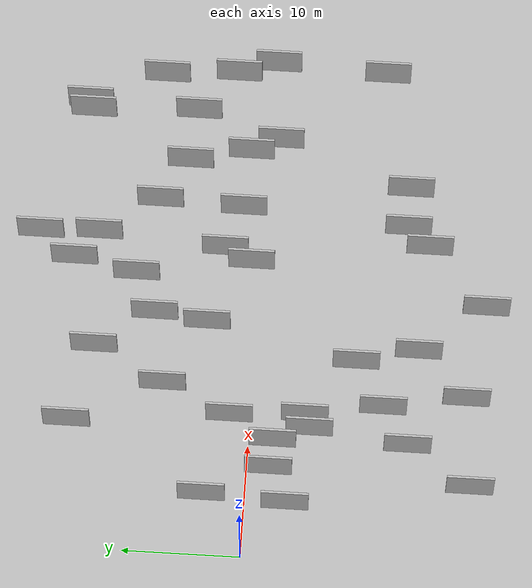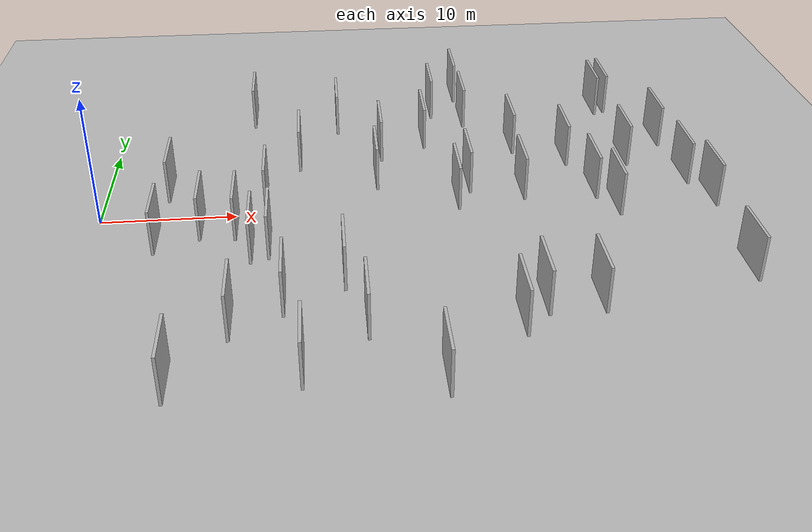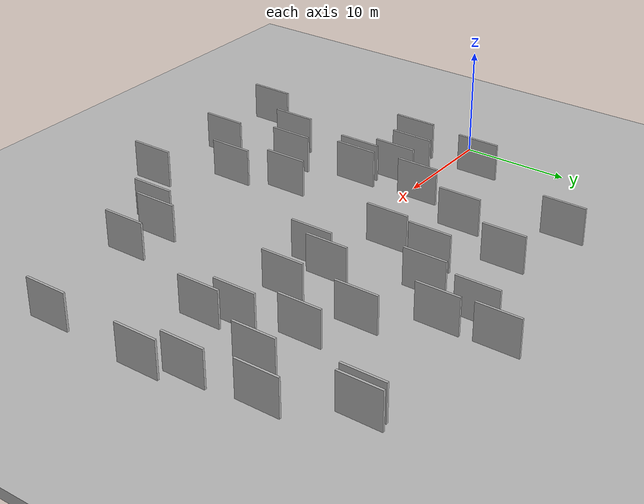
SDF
<?xml version="1.0" encoding="utf-8"?>

<sdf version="1.6">

   <world name="default">

      <gui fullscreen="0">

         <camera name="user_camera">

            <pose>-15 0 4.57585 0 0 0</pose>

            <view_controller>orbit</view_controller>

         </camera>

      </gui>

      <scene>

         <sky>

           <clouds>

             <speed>12</speed>

           </clouds>

         </sky>

         <ambient>0.4 0.4 0.4 1</ambient>

         <background>0.7 0.7 0.7 1</background>

         <shadows>1</shadows>

      </scene>

      <gravity>0 0 -9.8066</gravity>

      <magnetic_field>6e-06 2.3e-05 -4.2e-05</magnetic_field>

      <physics default="0" name="default_physics" type="ode">

         <ode>

            <solver>

               <type>quick</type>

               <iters>10</iters>

               <sor>1.0</sor>

               <use_dynamic_moi_rescaling>0</use_dynamic_moi_rescaling>

            </solver>

            <constraints>

               <cfm>0</cfm>

               <erp>0.2</erp>

               <contact_max_correcting_vel>100</contact_max_correcting_vel>

               <contact_surface_layer>0.001</contact_surface_layer>

            </constraints>

         </ode>

         <max_step_size>0.004</max_step_size>

         <real_time_factor>1</real_time_factor>

         <real_time_update_rate>250</real_time_update_rate>

      </physics>

      <light name="sun" type="directional">

         <cast_shadows>1</cast_shadows>

         <pose>0 0 10 0 0 0</pose>

         <diffuse>0.8 0.8 0.8 1</diffuse>

         <specular>0.2 0.2 0.2 1</specular>

         <attenuation>

            <range>1000</range>

            <constant>0.9</constant>

            <linear>0.01</linear>

            <quadratic>0.001</quadratic>

         </attenuation>

         <direction>-0.5 0.1 -0.9</direction>

      </light>

      <include>

         <name>ground_plane_1</name>

         <uri>model://HANNAS_ground_plane</uri>

         <pose>0 0 0  0 0 0</pose>

      </include>

      <include>

         <name>ground_plane_2</name>

         <uri>model://HANNAS_ground_plane</uri>

         <pose>100 0 0  0 0 0</pose>

      </include>

      <model name="HANNAS_wall_1">

         <static>1</static>

         <pose frame="">44.7599 2.9749 0.0 0.000000 0.000000 1.570796</pose>

         <link name="link">

            <pose frame="">0 0 2.00 0 0 0</pose>

            <collision name="collision">

               <geometry>

                  <box>

                     <size>4.00 0.2 4.00</size>

                  </box>

               </geometry>

               <max_contacts>10</max_contacts>

               <surface>

                  <contact>

                     <ode/>

                  </contact>

                  <bounce/>

                  <friction>

                     <torsional>

                        <ode/>

                     </torsional>

                     <ode/>

                  </friction>

               </surface>

            </collision>

            <visual name="visual">

               <cast_shadows>0</cast_shadows>

               <geometry>

                  <box>

                     <size>4.00 0.2 4.00</size>

                  </box>

               </geometry>

               <material>

                  <script>

                     <uri>model://HANNAS_wall/materials/scripts</uri>

                     <uri>model://HANNAS_wall/materials/textures</uri>

                     <name>vrc/HANNAS_wall</name>

                  </script>

               </material>

            </visual>

            <self_collide>0</self_collide>

            <enable_wind>0</enable_wind>

            <kinematic>0</kinematic>

         </link>

      </model>

      <model name="HANNAS_wall_2">

         <static>1</static>

         <pose frame="">27.7010 3.0862 0.0 0.000000 0.000000 1.570796</pose>

         <link name="link">

            <pose frame="">0 0 2.00 0 0 0</pose>

            <collision name="collision">

               <geometry>

                  <box>

                     <size>4.00 0.2 4.00</size>

                  </box>

               </geometry>

               <max_contacts>10</max_contacts>

               <surface>

                  <contact>

                     <ode/>

                  </contact>

                  <bounce/>

                  <friction>

                     <torsional>

                        <ode/>

                     </torsional>

                     <ode/>

                  </friction>

               </surface>

            </collision>

            <visual name="visual">

               <cast_shadows>0</cast_shadows>

               <geometry>

                  <box>

                     <size>4.00 0.2 4.00</size>

                  </box>

               </geometry>

               <material>

                  <script>

                     <uri>model://HANNAS_wall/materials/scripts</uri>

                     <uri>model://HANNAS_wall/materials/textures</uri>

                     <name>vrc/HANNAS_wall</name>

                  </script>

               </material>

            </visual>

            <self_collide>0</self_collide>

            <enable_wind>0</enable_wind>

            <kinematic>0</kinematic>

         </link>

      </model>

      <model name="HANNAS_wall_3">

         <static>1</static>

         <pose frame="">28.8396 -14.5593 0.0 0.000000 0.000000 1.570796</pose>

         <link name="link">

            <pose frame="">0 0 2.00 0 0 0</pose>

            <collision name="collision">

               <geometry>

                  <box>

                     <size>4.00 0.2 4.00</size>

                  </box>

               </geometry>

               <max_contacts>10</max_contacts>

               <surface>

                  <contact>

                     <ode/>

                  </contact>

                  <bounce/>

                  <friction>

                     <torsional>

                        <ode/>

                     </torsional>

                     <ode/>

                  </friction>

               </surface>

            </collision>

            <visual name="visual">

               <cast_shadows>0</cast_shadows>

               <geometry>

                  <box>

                     <size>4.00 0.2 4.00</size>

                  </box>

               </geometry>

               <material>

                  <script>

                     <uri>model://HANNAS_wall/materials/scripts</uri>

                     <uri>model://HANNAS_wall/materials/textures</uri>

                     <name>vrc/HANNAS_wall</name>

                  </script>

               </material>

            </visual>

            <self_collide>0</self_collide>

            <enable_wind>0</enable_wind>

            <kinematic>0</kinematic>

         </link>

      </model>

      <model name="HANNAS_wall_4">

         <static>1</static>

         <pose frame="">4.5021 -3.4465 0.0 0.000000 0.000000 1.570796</pose>

         <link name="link">

            <pose frame="">0 0 2.00 0 0 0</pose>

            <collision name="collision">

               <geometry>

                  <box>

                     <size>4.00 0.2 4.00</size>

                  </box>

               </geometry>

               <max_contacts>10</max_contacts>

               <surface>

                  <contact>

                     <ode/>

                  </contact>

                  <bounce/>

                  <friction>

                     <torsional>

                        <ode/>

                     </torsional>

                     <ode/>

                  </friction>

               </surface>

            </collision>

            <visual name="visual">

               <cast_shadows>0</cast_shadows>

               <geometry>

                  <box>

                     <size>4.00 0.2 4.00</size>

                  </box>

               </geometry>

               <material>

                  <script>

                     <uri>model://HANNAS_wall/materials/scripts</uri>

                     <uri>model://HANNAS_wall/materials/textures</uri>

                     <name>vrc/HANNAS_wall</name>

                  </script>

               </material>

            </visual>

            <self_collide>0</self_collide>

            <enable_wind>0</enable_wind>

            <kinematic>0</kinematic>

         </link>

      </model>

      <model name="HANNAS_wall_5">

         <static>1</static>

         <pose frame="">14.7368 7.5859 0.0 0.000000 0.000000 1.570796</pose>

         <link name="link">

            <pose frame="">0 0 2.00 0 0 0</pose>

            <collision name="collision">

               <geometry>

                  <box>

                     <size>4.00 0.2 4.00</size>

                  </box>

               </geometry>

               <max_contacts>10</max_contacts>

               <surface>

                  <contact>

                     <ode/>

                  </contact>

                  <bounce/>

                  <friction>

                     <torsional>

                        <ode/>

                     </torsional>

                     <ode/>

                  </friction>

               </surface>

            </collision>

            <visual name="visual">

               <cast_shadows>0</cast_shadows>

               <geometry>

                  <box>

                     <size>4.00 0.2 4.00</size>

                  </box>

               </geometry>

               <material>

                  <script>

                     <uri>model://HANNAS_wall/materials/scripts</uri>

                     <uri>model://HANNAS_wall/materials/textures</uri>

                     <name>vrc/HANNAS_wall</name>

                  </script>

               </material>

            </visual>

            <self_collide>0</self_collide>

            <enable_wind>0</enable_wind>

            <kinematic>0</kinematic>

         </link>

      </model>

      <model name="HANNAS_wall_6">

         <static>1</static>

         <pose frame="">45.3804 -10.1234 0.0 0.000000 0.000000 1.570796</pose>

         <link name="link">

            <pose frame="">0 0 2.00 0 0 0</pose>

            <collision name="collision">

               <geometry>

                  <box>

                     <size>4.00 0.2 4.00</size>

                  </box>

               </geometry>

               <max_contacts>10</max_contacts>

               <surface>

                  <contact>

                     <ode/>

                  </contact>

                  <bounce/>

                  <friction>

                     <torsional>

                        <ode/>

                     </torsional>

                     <ode/>

                  </friction>

               </surface>

            </collision>

            <visual name="visual">

               <cast_shadows>0</cast_shadows>

               <geometry>

                  <box>

                     <size>4.00 0.2 4.00</size>

                  </box>

               </geometry>

               <material>

                  <script>

                     <uri>model://HANNAS_wall/materials/scripts</uri>

                     <uri>model://HANNAS_wall/materials/textures</uri>

                     <name>vrc/HANNAS_wall</name>

                  </script>

               </material>

            </visual>

            <self_collide>0</self_collide>

            <enable_wind>0</enable_wind>

            <kinematic>0</kinematic>

         </link>

      </model>

      <model name="HANNAS_wall_7">

         <static>1</static>

         <pose frame="">35.9530 6.6664 0.0 0.000000 0.000000 1.570796</pose>

         <link name="link">

            <pose frame="">0 0 2.00 0 0 0</pose>

            <collision name="collision">

               <geometry>

                  <box>

                     <size>4.00 0.2 4.00</size>

                  </box>

               </geometry>

               <max_contacts>10</max_contacts>

               <surface>

                  <contact>

                     <ode/>

                  </contact>

                  <bounce/>

                  <friction>

                     <torsional>

                        <ode/>

                     </torsional>

                     <ode/>

                  </friction>

               </surface>

            </collision>

            <visual name="visual">

               <cast_shadows>0</cast_shadows>

               <geometry>

                  <box>

                     <size>4.00 0.2 4.00</size>

                  </box>

               </geometry>

               <material>

                  <script>

                     <uri>model://HANNAS_wall/materials/scripts</uri>

                     <uri>model://HANNAS_wall/materials/textures</uri>

                     <name>vrc/HANNAS_wall</name>

                  </script>

               </material>

            </visual>

            <self_collide>0</self_collide>

            <enable_wind>0</enable_wind>

            <kinematic>0</kinematic>

         </link>

      </model>

      <model name="HANNAS_wall_8">

         <static>1</static>

         <pose frame="">26.0616 16.0210 0.0 0.000000 0.000000 1.570796</pose>

         <link name="link">

            <pose frame="">0 0 2.00 0 0 0</pose>

            <collision name="collision">

               <geometry>

                  <box>

                     <size>4.00 0.2 4.00</size>

                  </box>

               </geometry>

               <max_contacts>10</max_contacts>

               <surface>

                  <contact>

                     <ode/>

                  </contact>

                  <bounce/>

                  <friction>

                     <torsional>

                        <ode/>

                     </torsional>

                     <ode/>

                  </friction>

               </surface>

            </collision>

            <visual name="visual">

               <cast_shadows>0</cast_shadows>

               <geometry>

                  <box>

                     <size>4.00 0.2 4.00</size>

                  </box>

               </geometry>

               <material>

                  <script>

                     <uri>model://HANNAS_wall/materials/scripts</uri>

                     <uri>model://HANNAS_wall/materials/textures</uri>

                     <name>vrc/HANNAS_wall</name>

                  </script>

               </material>

            </visual>

            <self_collide>0</self_collide>

            <enable_wind>0</enable_wind>

            <kinematic>0</kinematic>

         </link>

      </model>

      <model name="HANNAS_wall_9">

         <static>1</static>

         <pose frame="">31.6776 1.7354 0.0 0.000000 0.000000 1.570796</pose>

         <link name="link">

            <pose frame="">0 0 2.00 0 0 0</pose>

            <collision name="collision">

               <geometry>

                  <box>

                     <size>4.00 0.2 4.00</size>

                  </box>

               </geometry>

               <max_contacts>10</max_contacts>

               <surface>

                  <contact>

                     <ode/>

                  </contact>

                  <bounce/>

                  <friction>

                     <torsional>

                        <ode/>

                     </torsional>

                     <ode/>

                  </friction>

               </surface>

            </collision>

            <visual name="visual">

               <cast_shadows>0</cast_shadows>

               <geometry>

                  <box>

                     <size>4.00 0.2 4.00</size>

                  </box>

               </geometry>

               <material>

                  <script>

                     <uri>model://HANNAS_wall/materials/scripts</uri>

                     <uri>model://HANNAS_wall/materials/textures</uri>

                     <name>vrc/HANNAS_wall</name>

                  </script>

               </material>

            </visual>

            <self_collide>0</self_collide>

            <enable_wind>0</enable_wind>

            <kinematic>0</kinematic>

         </link>

      </model>

      <model name="HANNAS_wall_10">

         <static>1</static>

         <pose frame="">6.8387 -18.8885 0.0 0.000000 0.000000 1.570796</pose>

         <link name="link">

            <pose frame="">0 0 2.00 0 0 0</pose>

            <collision name="collision">

               <geometry>

                  <box>

                     <size>4.00 0.2 4.00</size>

                  </box>

               </geometry>

               <max_contacts>10</max_contacts>

               <surface>

                  <contact>

                     <ode/>

                  </contact>

                  <bounce/>

                  <friction>

                     <torsional>

                        <ode/>

                     </torsional>

                     <ode/>

                  </friction>

               </surface>

            </collision>

            <visual name="visual">

               <cast_shadows>0</cast_shadows>

               <geometry>

                  <box>

                     <size>4.00 0.2 4.00</size>

                  </box>

               </geometry>

               <material>

                  <script>

                     <uri>model://HANNAS_wall/materials/scripts</uri>

                     <uri>model://HANNAS_wall/materials/textures</uri>

                     <name>vrc/HANNAS_wall</name>

                  </script>

               </material>

            </visual>

            <self_collide>0</self_collide>

            <enable_wind>0</enable_wind>

            <kinematic>0</kinematic>

         </link>

      </model>

      <model name="HANNAS_wall_11">

         <static>1</static>

         <pose frame="">44.2711 9.2897 0.0 0.000000 0.000000 1.570796</pose>

         <link name="link">

            <pose frame="">0 0 2.00 0 0 0</pose>

            <collision name="collision">

               <geometry>

                  <box>

                     <size>4.00 0.2 4.00</size>

                  </box>

               </geometry>

               <max_contacts>10</max_contacts>

               <surface>

                  <contact>

                     <ode/>

                  </contact>

                  <bounce/>

                  <friction>

                     <torsional>

                        <ode/>

                     </torsional>

                     <ode/>

                  </friction>

               </surface>

            </collision>

            <visual name="visual">

               <cast_shadows>0</cast_shadows>

               <geometry>

                  <box>

                     <size>4.00 0.2 4.00</size>

                  </box>

               </geometry>

               <material>

                  <script>

                     <uri>model://HANNAS_wall/materials/scripts</uri>

                     <uri>model://HANNAS_wall/materials/textures</uri>

                     <name>vrc/HANNAS_wall</name>

                  </script>

               </material>

            </visual>

            <self_collide>0</self_collide>

            <enable_wind>0</enable_wind>

            <kinematic>0</kinematic>

         </link>

      </model>

      <model name="HANNAS_wall_12">

         <static>1</static>

         <pose frame="">41.2984 15.8101 0.0 0.000000 0.000000 1.570796</pose>

         <link name="link">

            <pose frame="">0 0 2.00 0 0 0</pose>

            <collision name="collision">

               <geometry>

                  <box>

                     <size>4.00 0.2 4.00</size>

                  </box>

               </geometry>

               <max_contacts>10</max_contacts>

               <surface>

                  <contact>

                     <ode/>

                  </contact>

                  <bounce/>

                  <friction>

                     <torsional>

                        <ode/>

                     </torsional>

                     <ode/>

                  </friction>

               </surface>

            </collision>

            <visual name="visual">

               <cast_shadows>0</cast_shadows>

               <geometry>

                  <box>

                     <size>4.00 0.2 4.00</size>

                  </box>

               </geometry>

               <material>

                  <script>

                     <uri>model://HANNAS_wall/materials/scripts</uri>

                     <uri>model://HANNAS_wall/materials/textures</uri>

                     <name>vrc/HANNAS_wall</name>

                  </script>

               </material>

            </visual>

            <self_collide>0</self_collide>

            <enable_wind>0</enable_wind>

            <kinematic>0</kinematic>

         </link>

      </model>

      <model name="HANNAS_wall_13">

         <static>1</static>

         <pose frame="">37.1559 1.4087 0.0 0.000000 0.000000 1.570796</pose>

         <link name="link">

            <pose frame="">0 0 2.00 0 0 0</pose>

            <collision name="collision">

               <geometry>

                  <box>

                     <size>4.00 0.2 4.00</size>

                  </box>

               </geometry>

               <max_contacts>10</max_contacts>

               <surface>

                  <contact>

                     <ode/>

                  </contact>

                  <bounce/>

                  <friction>

                     <torsional>

                        <ode/>

                     </torsional>

                     <ode/>

                  </friction>

               </surface>

            </collision>

            <visual name="visual">

               <cast_shadows>0</cast_shadows>

               <geometry>

                  <box>

                     <size>4.00 0.2 4.00</size>

                  </box>

               </geometry>

               <material>

                  <script>

                     <uri>model://HANNAS_wall/materials/scripts</uri>

                     <uri>model://HANNAS_wall/materials/textures</uri>

                     <name>vrc/HANNAS_wall</name>

                  </script>

               </material>

            </visual>

            <self_collide>0</self_collide>

            <enable_wind>0</enable_wind>

            <kinematic>0</kinematic>

         </link>

      </model>

      <model name="HANNAS_wall_14">

         <static>1</static>

         <pose frame="">17.7232 -8.7686 0.0 0.000000 0.000000 1.570796</pose>

         <link name="link">

            <pose frame="">0 0 2.00 0 0 0</pose>

            <collision name="collision">

               <geometry>

                  <box>

                     <size>4.00 0.2 4.00</size>

                  </box>

               </geometry>

               <max_contacts>10</max_contacts>

               <surface>

                  <contact>

                     <ode/>

                  </contact>

                  <bounce/>

                  <friction>

                     <torsional>

                        <ode/>

                     </torsional>

                     <ode/>

                  </friction>

               </surface>

            </collision>

            <visual name="visual">

               <cast_shadows>0</cast_shadows>

               <geometry>

                  <box>

                     <size>4.00 0.2 4.00</size>

                  </box>

               </geometry>

               <material>

                  <script>

                     <uri>model://HANNAS_wall/materials/scripts</uri>

                     <uri>model://HANNAS_wall/materials/textures</uri>

                     <name>vrc/HANNAS_wall</name>

                  </script>

               </material>

            </visual>

            <self_collide>0</self_collide>

            <enable_wind>0</enable_wind>

            <kinematic>0</kinematic>

         </link>

      </model>

      <model name="HANNAS_wall_15">

         <static>1</static>

         <pose frame="">23.4018 -19.6568 0.0 0.000000 0.000000 1.570796</pose>

         <link name="link">

            <pose frame="">0 0 2.00 0 0 0</pose>

            <collision name="collision">

               <geometry>

                  <box>

                     <size>4.00 0.2 4.00</size>

                  </box>

               </geometry>

               <max_contacts>10</max_contacts>

               <surface>

                  <contact>

                     <ode/>

                  </contact>

                  <bounce/>

                  <friction>

                     <torsional>

                        <ode/>

                     </torsional>

                     <ode/>

                  </friction>

               </surface>

            </collision>

            <visual name="visual">

               <cast_shadows>0</cast_shadows>

               <geometry>

                  <box>

                     <size>4.00 0.2 4.00</size>

                  </box>

               </geometry>

               <material>

                  <script>

                     <uri>model://HANNAS_wall/materials/scripts</uri>

                     <uri>model://HANNAS_wall/materials/textures</uri>

                     <name>vrc/HANNAS_wall</name>

                  </script>

               </material>

            </visual>

            <self_collide>0</self_collide>

            <enable_wind>0</enable_wind>

            <kinematic>0</kinematic>

         </link>

      </model>

      <model name="HANNAS_wall_16">

         <static>1</static>

         <pose frame="">21.2664 8.7195 0.0 0.000000 0.000000 1.570796</pose>

         <link name="link">

            <pose frame="">0 0 2.00 0 0 0</pose>

            <collision name="collision">

               <geometry>

                  <box>

                     <size>4.00 0.2 4.00</size>

                  </box>

               </geometry>

               <max_contacts>10</max_contacts>

               <surface>

                  <contact>

                     <ode/>

                  </contact>

                  <bounce/>

                  <friction>

                     <torsional>

                        <ode/>

                     </torsional>

                     <ode/>

                  </friction>

               </surface>

            </collision>

            <visual name="visual">

               <cast_shadows>0</cast_shadows>

               <geometry>

                  <box>

                     <size>4.00 0.2 4.00</size>

                  </box>

               </geometry>

               <material>

                  <script>

                     <uri>model://HANNAS_wall/materials/scripts</uri>

                     <uri>model://HANNAS_wall/materials/textures</uri>

                     <name>vrc/HANNAS_wall</name>

                  </script>

               </material>

            </visual>

            <self_collide>0</self_collide>

            <enable_wind>0</enable_wind>

            <kinematic>0</kinematic>

         </link>

      </model>

      <model name="HANNAS_wall_17">

         <static>1</static>

         <pose frame="">20.6530 4.1828 0.0 0.000000 0.000000 1.570796</pose>

         <link name="link">

            <pose frame="">0 0 2.00 0 0 0</pose>

            <collision name="collision">

               <geometry>

                  <box>

                     <size>4.00 0.2 4.00</size>

                  </box>

               </geometry>

               <max_contacts>10</max_contacts>

               <surface>

                  <contact>

                     <ode/>

                  </contact>

                  <bounce/>

                  <friction>

                     <torsional>

                        <ode/>

                     </torsional>

                     <ode/>

                  </friction>

               </surface>

            </collision>

            <visual name="visual">

               <cast_shadows>0</cast_shadows>

               <geometry>

                  <box>

                     <size>4.00 0.2 4.00</size>

                  </box>

               </geometry>

               <material>

                  <script>

                     <uri>model://HANNAS_wall/materials/scripts</uri>

                     <uri>model://HANNAS_wall/materials/textures</uri>

                     <name>vrc/HANNAS_wall</name>

                  </script>

               </material>

            </visual>

            <self_collide>0</self_collide>

            <enable_wind>0</enable_wind>

            <kinematic>0</kinematic>

         </link>

      </model>

      <model name="HANNAS_wall_18">

         <static>1</static>

         <pose frame="">28.4079 19.1442 0.0 0.000000 0.000000 1.570796</pose>

         <link name="link">

            <pose frame="">0 0 2.00 0 0 0</pose>

            <collision name="collision">

               <geometry>

                  <box>

                     <size>4.00 0.2 4.00</size>

                  </box>

               </geometry>

               <max_contacts>10</max_contacts>

               <surface>

                  <contact>

                     <ode/>

                  </contact>

                  <bounce/>

                  <friction>

                     <torsional>

                        <ode/>

                     </torsional>

                     <ode/>

                  </friction>

               </surface>

            </collision>

            <visual name="visual">

               <cast_shadows>0</cast_shadows>

               <geometry>

                  <box>

                     <size>4.00 0.2 4.00</size>

                  </box>

               </geometry>

               <material>

                  <script>

                     <uri>model://HANNAS_wall/materials/scripts</uri>

                     <uri>model://HANNAS_wall/materials/textures</uri>

                     <name>vrc/HANNAS_wall</name>

                  </script>

               </material>

            </visual>

            <self_collide>0</self_collide>

            <enable_wind>0</enable_wind>

            <kinematic>0</kinematic>

         </link>

      </model>

      <model name="HANNAS_wall_19">

         <static>1</static>

         <pose frame="">14.8670 -18.2886 0.0 0.000000 0.000000 1.570796</pose>

         <link name="link">

            <pose frame="">0 0 2.00 0 0 0</pose>

            <collision name="collision">

               <geometry>

                  <box>

                     <size>4.00 0.2 4.00</size>

                  </box>

               </geometry>

               <max_contacts>10</max_contacts>

               <surface>

                  <contact>

                     <ode/>

                  </contact>

                  <bounce/>

                  <friction>

                     <torsional>

                        <ode/>

                     </torsional>

                     <ode/>

                  </friction>

               </surface>

            </collision>

            <visual name="visual">

               <cast_shadows>0</cast_shadows>

               <geometry>

                  <box>

                     <size>4.00 0.2 4.00</size>

                  </box>

               </geometry>

               <material>

                  <script>

                     <uri>model://HANNAS_wall/materials/scripts</uri>

                     <uri>model://HANNAS_wall/materials/textures</uri>

                     <name>vrc/HANNAS_wall</name>

                  </script>

               </material>

            </visual>

            <self_collide>0</self_collide>

            <enable_wind>0</enable_wind>

            <kinematic>0</kinematic>

         </link>

      </model>

      <model name="HANNAS_wall_20">

         <static>1</static>

         <pose frame="">40.4381 15.5138 0.0 0.000000 0.000000 1.570796</pose>

         <link name="link">

            <pose frame="">0 0 2.00 0 0 0</pose>

            <collision name="collision">

               <geometry>

                  <box>

                     <size>4.00 0.2 4.00</size>

                  </box>

               </geometry>

               <max_contacts>10</max_contacts>

               <surface>

                  <contact>

                     <ode/>

                  </contact>

                  <bounce/>

                  <friction>

                     <torsional>

                        <ode/>

                     </torsional>

                     <ode/>

                  </friction>

               </surface>

            </collision>

            <visual name="visual">

               <cast_shadows>0</cast_shadows>

               <geometry>

                  <box>

                     <size>4.00 0.2 4.00</size>

                  </box>

               </geometry>

               <material>

                  <script>

                     <uri>model://HANNAS_wall/materials/scripts</uri>

                     <uri>model://HANNAS_wall/materials/textures</uri>

                     <name>vrc/HANNAS_wall</name>

                  </script>

               </material>

            </visual>

            <self_collide>0</self_collide>

            <enable_wind>0</enable_wind>

            <kinematic>0</kinematic>

         </link>

      </model>

      <model name="HANNAS_wall_21">

         <static>1</static>

         <pose frame="">18.9939 -14.0450 0.0 0.000000 0.000000 1.570796</pose>

         <link name="link">

            <pose frame="">0 0 2.00 0 0 0</pose>

            <collision name="collision">

               <geometry>

                  <box>

                     <size>4.00 0.2 4.00</size>

                  </box>

               </geometry>

               <max_contacts>10</max_contacts>

               <surface>

                  <contact>

                     <ode/>

                  </contact>

                  <bounce/>

                  <friction>

                     <torsional>

                        <ode/>

                     </torsional>

                     <ode/>

                  </friction>

               </surface>

            </collision>

            <visual name="visual">

               <cast_shadows>0</cast_shadows>

               <geometry>

                  <box>

                     <size>4.00 0.2 4.00</size>

                  </box>

               </geometry>

               <material>

                  <script>

                     <uri>model://HANNAS_wall/materials/scripts</uri>

                     <uri>model://HANNAS_wall/materials/textures</uri>

                     <name>vrc/HANNAS_wall</name>

                  </script>

               </material>

            </visual>

            <self_collide>0</self_collide>

            <enable_wind>0</enable_wind>

            <kinematic>0</kinematic>

         </link>

      </model>

      <model name="HANNAS_wall_22">

         <static>1</static>

         <pose frame="">10.2806 -13.4871 0.0 0.000000 0.000000 1.570796</pose>

         <link name="link">

            <pose frame="">0 0 2.00 0 0 0</pose>

            <collision name="collision">

               <geometry>

                  <box>

                     <size>4.00 0.2 4.00</size>

                  </box>

               </geometry>

               <max_contacts>10</max_contacts>

               <surface>

                  <contact>

                     <ode/>

                  </contact>

                  <bounce/>

                  <friction>

                     <torsional>

                        <ode/>

                     </torsional>

                     <ode/>

                  </friction>

               </surface>

            </collision>

            <visual name="visual">

               <cast_shadows>0</cast_shadows>

               <geometry>

                  <box>

                     <size>4.00 0.2 4.00</size>

                  </box>

               </geometry>

               <material>

                  <script>

                     <uri>model://HANNAS_wall/materials/scripts</uri>

                     <uri>model://HANNAS_wall/materials/textures</uri>

                     <name>vrc/HANNAS_wall</name>

                  </script>

               </material>

            </visual>

            <self_collide>0</self_collide>

            <enable_wind>0</enable_wind>

            <kinematic>0</kinematic>

         </link>

      </model>

      <model name="HANNAS_wall_23">

         <static>1</static>

         <pose frame="">28.5945 14.0586 0.0 0.000000 0.000000 1.570796</pose>

         <link name="link">

            <pose frame="">0 0 2.00 0 0 0</pose>

            <collision name="collision">

               <geometry>

                  <box>

                     <size>4.00 0.2 4.00</size>

                  </box>

               </geometry>

               <max_contacts>10</max_contacts>

               <surface>

                  <contact>

                     <ode/>

                  </contact>

                  <bounce/>

                  <friction>

                     <torsional>

                        <ode/>

                     </torsional>

                     <ode/>

                  </friction>

               </surface>

            </collision>

            <visual name="visual">

               <cast_shadows>0</cast_shadows>

               <geometry>

                  <box>

                     <size>4.00 0.2 4.00</size>

                  </box>

               </geometry>

               <material>

                  <script>

                     <uri>model://HANNAS_wall/materials/scripts</uri>

                     <uri>model://HANNAS_wall/materials/textures</uri>

                     <name>vrc/HANNAS_wall</name>

                  </script>

               </material>

            </visual>

            <self_collide>0</self_collide>

            <enable_wind>0</enable_wind>

            <kinematic>0</kinematic>

         </link>

      </model>

      <model name="HANNAS_wall_24">

         <static>1</static>

         <pose frame="">4.8969 3.6044 0.0 0.000000 0.000000 1.570796</pose>

         <link name="link">

            <pose frame="">0 0 2.00 0 0 0</pose>

            <collision name="collision">

               <geometry>

                  <box>

                     <size>4.00 0.2 4.00</size>

                  </box>

               </geometry>

               <max_contacts>10</max_contacts>

               <surface>

                  <contact>

                     <ode/>

                  </contact>

                  <bounce/>

                  <friction>

                     <torsional>

                        <ode/>

                     </torsional>

                     <ode/>

                  </friction>

               </surface>

            </collision>

            <visual name="visual">

               <cast_shadows>0</cast_shadows>

               <geometry>

                  <box>

                     <size>4.00 0.2 4.00</size>

                  </box>

               </geometry>

               <material>

                  <script>

                     <uri>model://HANNAS_wall/materials/scripts</uri>

                     <uri>model://HANNAS_wall/materials/textures</uri>

                     <name>vrc/HANNAS_wall</name>

                  </script>

               </material>

            </visual>

            <self_collide>0</self_collide>

            <enable_wind>0</enable_wind>

            <kinematic>0</kinematic>

         </link>

      </model>

      <model name="HANNAS_wall_25">

         <static>1</static>

         <pose frame="">13.6551 -11.2604 0.0 0.000000 0.000000 1.570796</pose>

         <link name="link">

            <pose frame="">0 0 2.00 0 0 0</pose>

            <collision name="collision">

               <geometry>

                  <box>

                     <size>4.00 0.2 4.00</size>

                  </box>

               </geometry>

               <max_contacts>10</max_contacts>

               <surface>

                  <contact>

                     <ode/>

                  </contact>

                  <bounce/>

                  <friction>

                     <torsional>

                        <ode/>

                     </torsional>

                     <ode/>

                  </friction>

               </surface>

            </collision>

            <visual name="visual">

               <cast_shadows>0</cast_shadows>

               <geometry>

                  <box>

                     <size>4.00 0.2 4.00</size>

                  </box>

               </geometry>

               <material>

                  <script>

                     <uri>model://HANNAS_wall/materials/scripts</uri>

                     <uri>model://HANNAS_wall/materials/textures</uri>

                     <name>vrc/HANNAS_wall</name>

                  </script>

               </material>

            </visual>

            <self_collide>0</self_collide>

            <enable_wind>0</enable_wind>

            <kinematic>0</kinematic>

         </link>

      </model>

      <model name="HANNAS_wall_26">

         <static>1</static>

         <pose frame="">34.3231 -12.6767 0.0 0.000000 0.000000 1.570796</pose>

         <link name="link">

            <pose frame="">0 0 2.00 0 0 0</pose>

            <collision name="collision">

               <geometry>

                  <box>

                     <size>4.00 0.2 4.00</size>

                  </box>

               </geometry>

               <max_contacts>10</max_contacts>

               <surface>

                  <contact>

                     <ode/>

                  </contact>

                  <bounce/>

                  <friction>

                     <torsional>

                        <ode/>

                     </torsional>

                     <ode/>

                  </friction>

               </surface>

            </collision>

            <visual name="visual">

               <cast_shadows>0</cast_shadows>

               <geometry>

                  <box>

                     <size>4.00 0.2 4.00</size>

                  </box>

               </geometry>

               <material>

                  <script>

                     <uri>model://HANNAS_wall/materials/scripts</uri>

                     <uri>model://HANNAS_wall/materials/textures</uri>

                     <name>vrc/HANNAS_wall</name>

                  </script>

               </material>

            </visual>

            <self_collide>0</self_collide>

            <enable_wind>0</enable_wind>

            <kinematic>0</kinematic>

         </link>

      </model>

      <model name="HANNAS_wall_27">

         <static>1</static>

         <pose frame="">7.5983 -1.8757 0.0 0.000000 0.000000 1.570796</pose>

         <link name="link">

            <pose frame="">0 0 2.00 0 0 0</pose>

            <collision name="collision">

               <geometry>

                  <box>

                     <size>4.00 0.2 4.00</size>

                  </box>

               </geometry>

               <max_contacts>10</max_contacts>

               <surface>

                  <contact>

                     <ode/>

                  </contact>

                  <bounce/>

                  <friction>

                     <torsional>

                        <ode/>

                     </torsional>

                     <ode/>

                  </friction>

               </surface>

            </collision>

            <visual name="visual">

               <cast_shadows>0</cast_shadows>

               <geometry>

                  <box>

                     <size>4.00 0.2 4.00</size>

                  </box>

               </geometry>

               <material>

                  <script>

                     <uri>model://HANNAS_wall/materials/scripts</uri>

                     <uri>model://HANNAS_wall/materials/textures</uri>

                     <name>vrc/HANNAS_wall</name>

                  </script>

               </material>

            </visual>

            <self_collide>0</self_collide>

            <enable_wind>0</enable_wind>

            <kinematic>0</kinematic>

         </link>

      </model>

      <model name="HANNAS_wall_28">

         <static>1</static>

         <pose frame="">11.3298 -5.1216 0.0 0.000000 0.000000 1.570796</pose>

         <link name="link">

            <pose frame="">0 0 2.00 0 0 0</pose>

            <collision name="collision">

               <geometry>

                  <box>

                     <size>4.00 0.2 4.00</size>

                  </box>

               </geometry>

               <max_contacts>10</max_contacts>

               <surface>

                  <contact>

                     <ode/>

                  </contact>

                  <bounce/>

                  <friction>

                     <torsional>

                        <ode/>

                     </torsional>

                     <ode/>

                  </friction>

               </surface>

            </collision>

            <visual name="visual">

               <cast_shadows>0</cast_shadows>

               <geometry>

                  <box>

                     <size>4.00 0.2 4.00</size>

                  </box>

               </geometry>

               <material>

                  <script>

                     <uri>model://HANNAS_wall/materials/scripts</uri>

                     <uri>model://HANNAS_wall/materials/textures</uri>

                     <name>vrc/HANNAS_wall</name>

                  </script>

               </material>

            </visual>

            <self_collide>0</self_collide>

            <enable_wind>0</enable_wind>

            <kinematic>0</kinematic>

         </link>

      </model>

      <model name="HANNAS_wall_29">

         <static>1</static>

         <pose frame="">10.9017 15.4708 0.0 0.000000 0.000000 1.570796</pose>

         <link name="link">

            <pose frame="">0 0 2.00 0 0 0</pose>

            <collision name="collision">

               <geometry>

                  <box>

                     <size>4.00 0.2 4.00</size>

                  </box>

               </geometry>

               <max_contacts>10</max_contacts>

               <surface>

                  <contact>

                     <ode/>

                  </contact>

                  <bounce/>

                  <friction>

                     <torsional>

                        <ode/>

                     </torsional>

                     <ode/>

                  </friction>

               </surface>

            </collision>

            <visual name="visual">

               <cast_shadows>0</cast_shadows>

               <geometry>

                  <box>

                     <size>4.00 0.2 4.00</size>

                  </box>

               </geometry>

               <material>

                  <script>

                     <uri>model://HANNAS_wall/materials/scripts</uri>

                     <uri>model://HANNAS_wall/materials/textures</uri>

                     <name>vrc/HANNAS_wall</name>

                  </script>

               </material>

            </visual>

            <self_collide>0</self_collide>

            <enable_wind>0</enable_wind>

            <kinematic>0</kinematic>

         </link>

      </model>

      <model name="HANNAS_wall_30">

         <static>1</static>

         <pose frame="">12.1799 1.7110 0.0 0.000000 0.000000 1.570796</pose>

         <link name="link">

            <pose frame="">0 0 2.00 0 0 0</pose>

            <collision name="collision">

               <geometry>

                  <box>

                     <size>4.00 0.2 4.00</size>

                  </box>

               </geometry>

               <max_contacts>10</max_contacts>

               <surface>

                  <contact>

                     <ode/>

                  </contact>

                  <bounce/>

                  <friction>

                     <torsional>

                        <ode/>

                     </torsional>

                     <ode/>

                  </friction>

               </surface>

            </collision>

            <visual name="visual">

               <cast_shadows>0</cast_shadows>

               <geometry>

                  <box>

                     <size>4.00 0.2 4.00</size>

                  </box>

               </geometry>

               <material>

                  <script>

                     <uri>model://HANNAS_wall/materials/scripts</uri>

                     <uri>model://HANNAS_wall/materials/textures</uri>

                     <name>vrc/HANNAS_wall</name>

                  </script>

               </material>

            </visual>

            <self_collide>0</self_collide>

            <enable_wind>0</enable_wind>

            <kinematic>0</kinematic>

         </link>

      </model>

      <model name="HANNAS_wall_31">

         <static>1</static>

         <pose frame="">10.1068 -2.0691 0.0 0.000000 0.000000 1.570796</pose>

         <link name="link">

            <pose frame="">0 0 2.00 0 0 0</pose>

            <collision name="collision">

               <geometry>

                  <box>

                     <size>4.00 0.2 4.00</size>

                  </box>

               </geometry>

               <max_contacts>10</max_contacts>

               <surface>

                  <contact>

                     <ode/>

                  </contact>

                  <bounce/>

                  <friction>

                     <torsional>

                        <ode/>

                     </torsional>

                     <ode/>

                  </friction>

               </surface>

            </collision>

            <visual name="visual">

               <cast_shadows>0</cast_shadows>

               <geometry>

                  <box>

                     <size>4.00 0.2 4.00</size>

                  </box>

               </geometry>

               <material>

                  <script>

                     <uri>model://HANNAS_wall/materials/scripts</uri>

                     <uri>model://HANNAS_wall/materials/textures</uri>

                     <name>vrc/HANNAS_wall</name>

                  </script>

               </material>

            </visual>

            <self_collide>0</self_collide>

            <enable_wind>0</enable_wind>

            <kinematic>0</kinematic>

         </link>

      </model>

      <model name="HANNAS_wall_32">

         <static>1</static>

         <pose frame="">38.3722 -1.0984 0.0 0.000000 0.000000 1.570796</pose>

         <link name="link">

            <pose frame="">0 0 2.00 0 0 0</pose>

            <collision name="collision">

               <geometry>

                  <box>

                     <size>4.00 0.2 4.00</size>

                  </box>

               </geometry>

               <max_contacts>10</max_contacts>

               <surface>

                  <contact>

                     <ode/>

                  </contact>

                  <bounce/>

                  <friction>

                     <torsional>

                        <ode/>

                     </torsional>

                     <ode/>

                  </friction>

               </surface>

            </collision>

            <visual name="visual">

               <cast_shadows>0</cast_shadows>

               <geometry>

                  <box>

                     <size>4.00 0.2 4.00</size>

                  </box>

               </geometry>

               <material>

                  <script>

                     <uri>model://HANNAS_wall/materials/scripts</uri>

                     <uri>model://HANNAS_wall/materials/textures</uri>

                     <name>vrc/HANNAS_wall</name>

                  </script>

               </material>

            </visual>

            <self_collide>0</self_collide>

            <enable_wind>0</enable_wind>

            <kinematic>0</kinematic>

         </link>

      </model>

      <model name="HANNAS_wall_33">

         <static>1</static>

         <pose frame="">40.8188 6.2565 0.0 0.000000 0.000000 1.570796</pose>

         <link name="link">

            <pose frame="">0 0 2.00 0 0 0</pose>

            <collision name="collision">

               <geometry>

                  <box>

                     <size>4.00 0.2 4.00</size>

                  </box>

               </geometry>

               <max_contacts>10</max_contacts>

               <surface>

                  <contact>

                     <ode/>

                  </contact>

                  <bounce/>

                  <friction>

                     <torsional>

                        <ode/>

                     </torsional>

                     <ode/>

                  </friction>

               </surface>

            </collision>

            <visual name="visual">

               <cast_shadows>0</cast_shadows>

               <geometry>

                  <box>

                     <size>4.00 0.2 4.00</size>

                  </box>

               </geometry>

               <material>

                  <script>

                     <uri>model://HANNAS_wall/materials/scripts</uri>

                     <uri>model://HANNAS_wall/materials/textures</uri>

                     <name>vrc/HANNAS_wall</name>

                  </script>

               </material>

            </visual>

            <self_collide>0</self_collide>

            <enable_wind>0</enable_wind>

            <kinematic>0</kinematic>

         </link>

      </model>

      <model name="HANNAS_wall_34">

         <static>1</static>

         <pose frame="">26.5601 0.7424 0.0 0.000000 0.000000 1.570796</pose>

         <link name="link">

            <pose frame="">0 0 2.00 0 0 0</pose>

            <collision name="collision">

               <geometry>

                  <box>

                     <size>4.00 0.2 4.00</size>

                  </box>

               </geometry>

               <max_contacts>10</max_contacts>

               <surface>

                  <contact>

                     <ode/>

                  </contact>

                  <bounce/>

                  <friction>

                     <torsional>

                        <ode/>

                     </torsional>

                     <ode/>

                  </friction>

               </surface>

            </collision>

            <visual name="visual">

               <cast_shadows>0</cast_shadows>

               <geometry>

                  <box>

                     <size>4.00 0.2 4.00</size>

                  </box>

               </geometry>

               <material>

                  <script>

                     <uri>model://HANNAS_wall/materials/scripts</uri>

                     <uri>model://HANNAS_wall/materials/textures</uri>

                     <name>vrc/HANNAS_wall</name>

                  </script>

               </material>

            </visual>

            <self_collide>0</self_collide>

            <enable_wind>0</enable_wind>

            <kinematic>0</kinematic>

         </link>

      </model>

      <model name="HANNAS_wall_35">

         <static>1</static>

         <pose frame="">30.6073 -12.6291 0.0 0.000000 0.000000 1.570796</pose>

         <link name="link">

            <pose frame="">0 0 2.00 0 0 0</pose>

            <collision name="collision">

               <geometry>

                  <box>

                     <size>4.00 0.2 4.00</size>

                  </box>

               </geometry>

               <max_contacts>10</max_contacts>

               <surface>

                  <contact>

                     <ode/>

                  </contact>

                  <bounce/>

                  <friction>

                     <torsional>

                        <ode/>

                     </torsional>

                     <ode/>

                  </friction>

               </surface>

            </collision>

            <visual name="visual">

               <cast_shadows>0</cast_shadows>

               <geometry>

                  <box>

                     <size>4.00 0.2 4.00</size>

                  </box>

               </geometry>

               <material>

                  <script>

                     <uri>model://HANNAS_wall/materials/scripts</uri>

                     <uri>model://HANNAS_wall/materials/textures</uri>

                     <name>vrc/HANNAS_wall</name>

                  </script>

               </material>

            </visual>

            <self_collide>0</self_collide>

            <enable_wind>0</enable_wind>

            <kinematic>0</kinematic>

         </link>

      </model>

      <model name="HANNAS_wall_36">

         <static>1</static>

         <pose frame="">45.9013 -0.4645 0.0 0.000000 0.000000 1.570796</pose>

         <link name="link">

            <pose frame="">0 0 2.00 0 0 0</pose>

            <collision name="collision">

               <geometry>

                  <box>

                     <size>4.00 0.2 4.00</size>

                  </box>

               </geometry>

               <max_contacts>10</max_contacts>

               <surface>

                  <contact>

                     <ode/>

                  </contact>

                  <bounce/>

                  <friction>

                     <torsional>

                        <ode/>

                     </torsional>

                     <ode/>

                  </friction>

               </surface>

            </collision>

            <visual name="visual">

               <cast_shadows>0</cast_shadows>

               <geometry>

                  <box>

                     <size>4.00 0.2 4.00</size>

                  </box>

               </geometry>

               <material>

                  <script>

                     <uri>model://HANNAS_wall/materials/scripts</uri>

                     <uri>model://HANNAS_wall/materials/textures</uri>

                     <name>vrc/HANNAS_wall</name>

                  </script>

               </material>

            </visual>

            <self_collide>0</self_collide>

            <enable_wind>0</enable_wind>

            <kinematic>0</kinematic>

         </link>

      </model>

      <model name="HANNAS_wall_37">

         <static>1</static>

         <pose frame="">24.8971 10.5670 0.0 0.000000 0.000000 1.570796</pose>

         <link name="link">

            <pose frame="">0 0 2.00 0 0 0</pose>

            <collision name="collision">

               <geometry>

                  <box>

                     <size>4.00 0.2 4.00</size>

                  </box>

               </geometry>

               <max_contacts>10</max_contacts>

               <surface>

                  <contact>

                     <ode/>

                  </contact>

                  <bounce/>

                  <friction>

                     <torsional>

                        <ode/>

                     </torsional>

                     <ode/>

                  </friction>

               </surface>

            </collision>

            <visual name="visual">

               <cast_shadows>0</cast_shadows>

               <geometry>

                  <box>

                     <size>4.00 0.2 4.00</size>

                  </box>

               </geometry>

               <material>

                  <script>

                     <uri>model://HANNAS_wall/materials/scripts</uri>

                     <uri>model://HANNAS_wall/materials/textures</uri>

                     <name>vrc/HANNAS_wall</name>

                  </script>

               </material>

            </visual>

            <self_collide>0</self_collide>

            <enable_wind>0</enable_wind>

            <kinematic>0</kinematic>

         </link>

      </model>

      <model name="HANNAS_wall_38">

         <static>1</static>

         <pose frame="">32.0073 9.0117 0.0 0.000000 0.000000 1.570796</pose>

         <link name="link">

            <pose frame="">0 0 2.00 0 0 0</pose>

            <collision name="collision">

               <geometry>

                  <box>

                     <size>4.00 0.2 4.00</size>

                  </box>

               </geometry>

               <max_contacts>10</max_contacts>

               <surface>

                  <contact>

                     <ode/>

                  </contact>

                  <bounce/>

                  <friction>

                     <torsional>

                        <ode/>

                     </torsional>

                     <ode/>

                  </friction>

               </surface>

            </collision>

            <visual name="visual">

               <cast_shadows>0</cast_shadows>

               <geometry>

                  <box>

                     <size>4.00 0.2 4.00</size>

                  </box>

               </geometry>

               <material>

                  <script>

                     <uri>model://HANNAS_wall/materials/scripts</uri>

                     <uri>model://HANNAS_wall/materials/textures</uri>

                     <name>vrc/HANNAS_wall</name>

                  </script>

               </material>

            </visual>

            <self_collide>0</self_collide>

            <enable_wind>0</enable_wind>

            <kinematic>0</kinematic>

         </link>

      </model>

      <model name="HANNAS_wall_39">

         <static>1</static>

         <pose frame="">12.5572 -4.6766 0.0 0.000000 0.000000 1.570796</pose>

         <link name="link">

            <pose frame="">0 0 2.00 0 0 0</pose>

            <collision name="collision">

               <geometry>

                  <box>

                     <size>4.00 0.2 4.00</size>

                  </box>

               </geometry>

               <max_contacts>10</max_contacts>

               <surface>

                  <contact>

                     <ode/>

                  </contact>

                  <bounce/>

                  <friction>

                     <torsional>

                        <ode/>

                     </torsional>

                     <ode/>

                  </friction>

               </surface>

            </collision>

            <visual name="visual">

               <cast_shadows>0</cast_shadows>

               <geometry>

                  <box>

                     <size>4.00 0.2 4.00</size>

                  </box>

               </geometry>

               <material>

                  <script>

                     <uri>model://HANNAS_wall/materials/scripts</uri>

                     <uri>model://HANNAS_wall/materials/textures</uri>

                     <name>vrc/HANNAS_wall</name>

                  </script>

               </material>

            </visual>

            <self_collide>0</self_collide>

            <enable_wind>0</enable_wind>

            <kinematic>0</kinematic>

         </link>

      </model>

      <model name="HANNAS_wall_40">

         <static>1</static>

         <pose frame="">17.8850 13.6739 0.0 0.000000 0.000000 1.570796</pose>

         <link name="link">

            <pose frame="">0 0 2.00 0 0 0</pose>

            <collision name="collision">

               <geometry>

                  <box>

                     <size>4.00 0.2 4.00</size>

                  </box>

               </geometry>

               <max_contacts>10</max_contacts>

               <surface>

                  <contact>

                     <ode/>

                  </contact>

                  <bounce/>

                  <friction>

                     <torsional>

                        <ode/>

                     </torsional>

                     <ode/>

                  </friction>

               </surface>

            </collision>

            <visual name="visual">

               <cast_shadows>0</cast_shadows>

               <geometry>

                  <box>

                     <size>4.00 0.2 4.00</size>

                  </box>

               </geometry>

               <material>

                  <script>

                     <uri>model://HANNAS_wall/materials/scripts</uri>

                     <uri>model://HANNAS_wall/materials/textures</uri>

                     <name>vrc/HANNAS_wall</name>

                  </script>

               </material>

            </visual>

            <self_collide>0</self_collide>

            <enable_wind>0</enable_wind>

            <kinematic>0</kinematic>

         </link>

      </model>

   </world>

</sdf>
